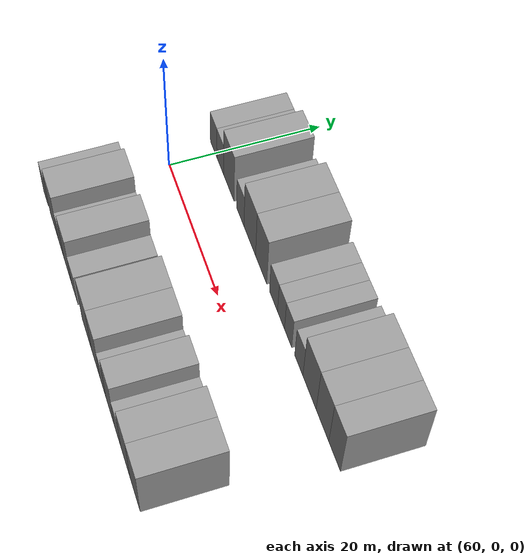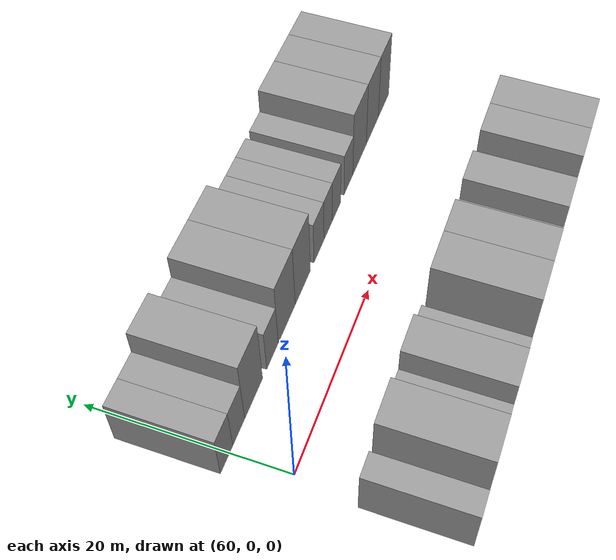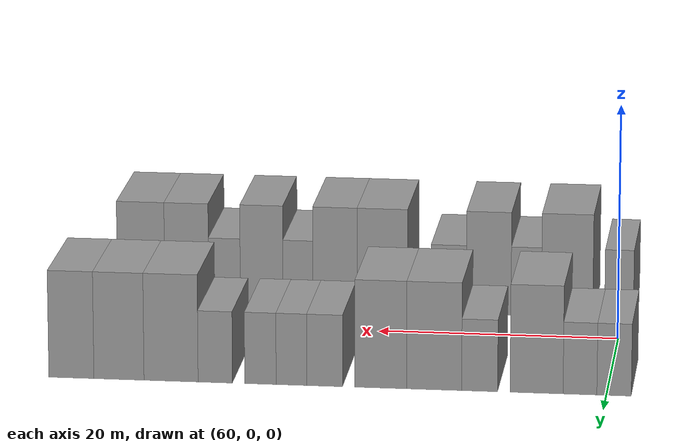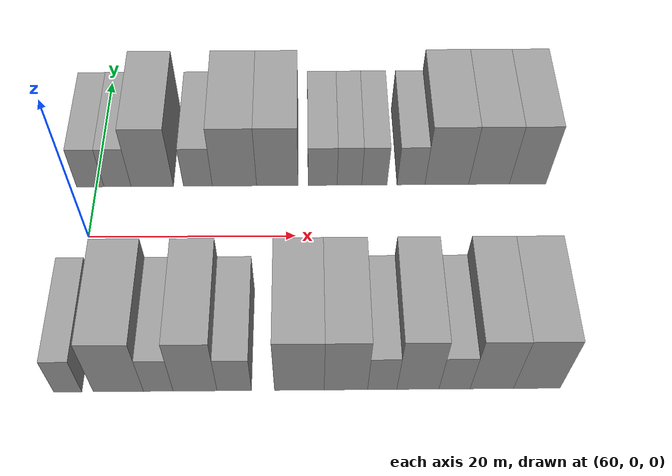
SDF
<sdf version="1.6">
 <world name="default">
  <model name="building_13">
   <static>1</static>
   <pose>59.3820 11.0000 0 0.000000 0.000000 1.570796</pose>
   <link name="link">
    <pose>0 0 3.00 0 0 0</pose>
    <collision name="collision"><geometry><box><size>10.0000 2.7569 6.0000</size></box></geometry></collision>
    <visual name="visual">
     <cast_shadows>0</cast_shadows>
     <geometry><box><size>10.0000 2.7569 6.0000</size></box></geometry>
     <material>
      <script>
       <uri>model://grey_wall/materials/scripts</uri>
       <uri>model://grey_wall/materials/textures</uri>
       <name>vrc/grey_wall</name>
      </script>
     </material>
    </visual>
   </link>
  </model>
  <model name="building_14">
   <static>1</static>
   <pose>62.1194 11.0000 0 0.000000 0.000000 1.570796</pose>
   <link name="link">
    <pose>0 0 3.00 0 0 0</pose>
    <collision name="collision"><geometry><box><size>10.0000 2.7179 6.0000</size></box></geometry></collision>
    <visual name="visual">
     <cast_shadows>0</cast_shadows>
     <geometry><box><size>10.0000 2.7179 6.0000</size></box></geometry>
     <material>
      <script>
       <uri>model://grey_wall/materials/scripts</uri>
       <uri>model://grey_wall/materials/textures</uri>
       <name>vrc/grey_wall</name>
      </script>
     </material>
    </visual>
   </link>
  </model>
  <model name="building_15">
   <static>1</static>
   <pose>65.6115 11.0000 0 0.000000 0.000000 1.570796</pose>
   <link name="link">
    <pose>0 0 4.50 0 0 0</pose>
    <collision name="collision"><geometry><box><size>10.0000 4.2663 9.0000</size></box></geometry></collision>
    <visual name="visual">
     <cast_shadows>0</cast_shadows>
     <geometry><box><size>10.0000 4.2663 9.0000</size></box></geometry>
     <material>
      <script>
       <uri>model://grey_wall/materials/scripts</uri>
       <uri>model://grey_wall/materials/textures</uri>
       <name>vrc/grey_wall</name>
      </script>
     </material>
    </visual>
   </link>
  </model>
  <model name="building_16">
   <static>1</static>
   <pose>70.1960 11.0000 0 0.000000 0.000000 1.570796</pose>
   <link name="link">
    <pose>0 0 3.00 0 0 0</pose>
    <collision name="collision"><geometry><box><size>10.0000 2.9028 6.0000</size></box></geometry></collision>
    <visual name="visual">
     <cast_shadows>0</cast_shadows>
     <geometry><box><size>10.0000 2.9028 6.0000</size></box></geometry>
     <material>
      <script>
       <uri>model://grey_wall/materials/scripts</uri>
       <uri>model://grey_wall/materials/textures</uri>
       <name>vrc/grey_wall</name>
      </script>
     </material>
    </visual>
   </link>
  </model>
  <model name="building_17">
   <static>1</static>
   <pose>73.8733 11.0000 0 0.000000 0.000000 1.570796</pose>
   <link name="link">
    <pose>0 0 4.50 0 0 0</pose>
    <collision name="collision"><geometry><box><size>10.0000 4.4518 9.0000</size></box></geometry></collision>
    <visual name="visual">
     <cast_shadows>0</cast_shadows>
     <geometry><box><size>10.0000 4.4518 9.0000</size></box></geometry>
     <material>
      <script>
       <uri>model://grey_wall/materials/scripts</uri>
       <uri>model://grey_wall/materials/textures</uri>
       <name>vrc/grey_wall</name>
      </script>
     </material>
    </visual>
   </link>
  </model>
  <model name="building_18">
   <static>1</static>
   <pose>78.1906 11.0000 0 0.000000 0.000000 1.570796</pose>
   <link name="link">
    <pose>0 0 4.50 0 0 0</pose>
    <collision name="collision"><geometry><box><size>10.0000 4.1828 9.0000</size></box></geometry></collision>
    <visual name="visual">
     <cast_shadows>0</cast_shadows>
     <geometry><box><size>10.0000 4.1828 9.0000</size></box></geometry>
     <material>
      <script>
       <uri>model://grey_wall/materials/scripts</uri>
       <uri>model://grey_wall/materials/textures</uri>
       <name>vrc/grey_wall</name>
      </script>
     </material>
    </visual>
   </link>
  </model>
  <model name="building_19">
   <static>1</static>
   <pose>82.7382 11.0000 0 0.000000 0.000000 1.570796</pose>
   <link name="link">
    <pose>0 0 3.00 0 0 0</pose>
    <collision name="collision"><geometry><box><size>10.0000 2.9123 6.0000</size></box></geometry></collision>
    <visual name="visual">
     <cast_shadows>0</cast_shadows>
     <geometry><box><size>10.0000 2.9123 6.0000</size></box></geometry>
     <material>
      <script>
       <uri>model://grey_wall/materials/scripts</uri>
       <uri>model://grey_wall/materials/textures</uri>
       <name>vrc/grey_wall</name>
      </script>
     </material>
    </visual>
   </link>
  </model>
  <model name="building_20">
   <static>1</static>
   <pose>85.4375 11.0000 0 0.000000 0.000000 1.570796</pose>
   <link name="link">
    <pose>0 0 3.00 0 0 0</pose>
    <collision name="collision"><geometry><box><size>10.0000 2.4862 6.0000</size></box></geometry></collision>
    <visual name="visual">
     <cast_shadows>0</cast_shadows>
     <geometry><box><size>10.0000 2.4862 6.0000</size></box></geometry>
     <material>
      <script>
       <uri>model://grey_wall/materials/scripts</uri>
       <uri>model://grey_wall/materials/textures</uri>
       <name>vrc/grey_wall</name>
      </script>
     </material>
    </visual>
   </link>
  </model>
  <model name="building_21">
   <static>1</static>
   <pose>87.9598 11.0000 0 0.000000 0.000000 1.570796</pose>
   <link name="link">
    <pose>0 0 3.00 0 0 0</pose>
    <collision name="collision"><geometry><box><size>10.0000 2.5585 6.0000</size></box></geometry></collision>
    <visual name="visual">
     <cast_shadows>0</cast_shadows>
     <geometry><box><size>10.0000 2.5585 6.0000</size></box></geometry>
     <material>
      <script>
       <uri>model://grey_wall/materials/scripts</uri>
       <uri>model://grey_wall/materials/textures</uri>
       <name>vrc/grey_wall</name>
      </script>
     </material>
    </visual>
   </link>
  </model>
  <model name="building_22">
   <static>1</static>
   <pose>91.6398 11.0000 0 0.000000 0.000000 1.570796</pose>
   <link name="link">
    <pose>0 0 3.00 0 0 0</pose>
    <collision name="collision"><geometry><box><size>10.0000 2.8016 6.0000</size></box></geometry></collision>
    <visual name="visual">
     <cast_shadows>0</cast_shadows>
     <geometry><box><size>10.0000 2.8016 6.0000</size></box></geometry>
     <material>
      <script>
       <uri>model://grey_wall/materials/scripts</uri>
       <uri>model://grey_wall/materials/textures</uri>
       <name>vrc/grey_wall</name>
      </script>
     </material>
    </visual>
   </link>
  </model>
  <model name="building_23">
   <static>1</static>
   <pose>95.2498 11.0000 0 0.000000 0.000000 1.570796</pose>
   <link name="link">
    <pose>0 0 4.50 0 0 0</pose>
    <collision name="collision"><geometry><box><size>10.0000 4.4185 9.0000</size></box></geometry></collision>
    <visual name="visual">
     <cast_shadows>0</cast_shadows>
     <geometry><box><size>10.0000 4.4185 9.0000</size></box></geometry>
     <material>
      <script>
       <uri>model://grey_wall/materials/scripts</uri>
       <uri>model://grey_wall/materials/textures</uri>
       <name>vrc/grey_wall</name>
      </script>
     </material>
    </visual>
   </link>
  </model>
  <model name="building_24">
   <static>1</static>
   <pose>99.5107 11.0000 0 0.000000 0.000000 1.570796</pose>
   <link name="link">
    <pose>0 0 4.50 0 0 0</pose>
    <collision name="collision"><geometry><box><size>10.0000 4.1032 9.0000</size></box></geometry></collision>
    <visual name="visual">
     <cast_shadows>0</cast_shadows>
     <geometry><box><size>10.0000 4.1032 9.0000</size></box></geometry>
     <material>
      <script>
       <uri>model://grey_wall/materials/scripts</uri>
       <uri>model://grey_wall/materials/textures</uri>
       <name>vrc/grey_wall</name>
      </script>
     </material>
    </visual>
   </link>
  </model>
  <model name="building_25">
   <static>1</static>
   <pose>103.4110 11.0000 0 0.000000 0.000000 1.570796</pose>
   <link name="link">
    <pose>0 0 4.50 0 0 0</pose>
    <collision name="collision"><geometry><box><size>10.0000 3.6974 9.0000</size></box></geometry></collision>
    <visual name="visual">
     <cast_shadows>0</cast_shadows>
     <geometry><box><size>10.0000 3.6974 9.0000</size></box></geometry>
     <material>
      <script>
       <uri>model://grey_wall/materials/scripts</uri>
       <uri>model://grey_wall/materials/textures</uri>
       <name>vrc/grey_wall</name>
      </script>
     </material>
    </visual>
   </link>
  </model>
  <model name="building_63">
   <static>1</static>
   <pose>60.2706 -11.0000 0 0.000000 0.000000 1.570796</pose>
   <link name="link">
    <pose>0 0 3.00 0 0 0</pose>
    <collision name="collision"><geometry><box><size>10.0000 2.4393 6.0000</size></box></geometry></collision>
    <visual name="visual">
     <cast_shadows>0</cast_shadows>
     <geometry><box><size>10.0000 2.4393 6.0000</size></box></geometry>
     <material>
      <script>
       <uri>model://grey_wall/materials/scripts</uri>
       <uri>model://grey_wall/materials/textures</uri>
       <name>vrc/grey_wall</name>
      </script>
     </material>
    </visual>
   </link>
  </model>
  <model name="building_64">
   <static>1</static>
   <pose>64.6664 -11.0000 0 0.000000 0.000000 1.570796</pose>
   <link name="link">
    <pose>0 0 4.50 0 0 0</pose>
    <collision name="collision"><geometry><box><size>10.0000 4.3523 9.0000</size></box></geometry></collision>
    <visual name="visual">
     <cast_shadows>0</cast_shadows>
     <geometry><box><size>10.0000 4.3523 9.0000</size></box></geometry>
     <material>
      <script>
       <uri>model://grey_wall/materials/scripts</uri>
       <uri>model://grey_wall/materials/textures</uri>
       <name>vrc/grey_wall</name>
      </script>
     </material>
    </visual>
   </link>
  </model>
  <model name="building_65">
   <static>1</static>
   <pose>68.1309 -11.0000 0 0.000000 0.000000 1.570796</pose>
   <link name="link">
    <pose>0 0 3.00 0 0 0</pose>
    <collision name="collision"><geometry><box><size>10.0000 2.5768 6.0000</size></box></geometry></collision>
    <visual name="visual">
     <cast_shadows>0</cast_shadows>
     <geometry><box><size>10.0000 2.5768 6.0000</size></box></geometry>
     <material>
      <script>
       <uri>model://grey_wall/materials/scripts</uri>
       <uri>model://grey_wall/materials/textures</uri>
       <name>vrc/grey_wall</name>
      </script>
     </material>
    </visual>
   </link>
  </model>
  <model name="building_66">
   <static>1</static>
   <pose>71.3247 -11.0000 0 0.000000 0.000000 1.570796</pose>
   <link name="link">
    <pose>0 0 4.50 0 0 0</pose>
    <collision name="collision"><geometry><box><size>10.0000 3.8108 9.0000</size></box></geometry></collision>
    <visual name="visual">
     <cast_shadows>0</cast_shadows>
     <geometry><box><size>10.0000 3.8108 9.0000</size></box></geometry>
     <material>
      <script>
       <uri>model://grey_wall/materials/scripts</uri>
       <uri>model://grey_wall/materials/textures</uri>
       <name>vrc/grey_wall</name>
      </script>
     </material>
    </visual>
   </link>
  </model>
  <model name="building_67">
   <static>1</static>
   <pose>74.7285 -11.0000 0 0.000000 0.000000 1.570796</pose>
   <link name="link">
    <pose>0 0 3.00 0 0 0</pose>
    <collision name="collision"><geometry><box><size>10.0000 2.9967 6.0000</size></box></geometry></collision>
    <visual name="visual">
     <cast_shadows>0</cast_shadows>
     <geometry><box><size>10.0000 2.9967 6.0000</size></box></geometry>
     <material>
      <script>
       <uri>model://grey_wall/materials/scripts</uri>
       <uri>model://grey_wall/materials/textures</uri>
       <name>vrc/grey_wall</name>
      </script>
     </material>
    </visual>
   </link>
  </model>
  <model name="building_68">
   <static>1</static>
   <pose>80.3791 -11.0000 0 0.000000 0.000000 1.570796</pose>
   <link name="link">
    <pose>0 0 4.50 0 0 0</pose>
    <collision name="collision"><geometry><box><size>10.0000 4.3046 9.0000</size></box></geometry></collision>
    <visual name="visual">
     <cast_shadows>0</cast_shadows>
     <geometry><box><size>10.0000 4.3046 9.0000</size></box></geometry>
     <material>
      <script>
       <uri>model://grey_wall/materials/scripts</uri>
       <uri>model://grey_wall/materials/textures</uri>
       <name>vrc/grey_wall</name>
      </script>
     </material>
    </visual>
   </link>
  </model>
  <model name="building_69">
   <static>1</static>
   <pose>84.4229 -11.0000 0 0.000000 0.000000 1.570796</pose>
   <link name="link">
    <pose>0 0 4.50 0 0 0</pose>
    <collision name="collision"><geometry><box><size>10.0000 3.7829 9.0000</size></box></geometry></collision>
    <visual name="visual">
     <cast_shadows>0</cast_shadows>
     <geometry><box><size>10.0000 3.7829 9.0000</size></box></geometry>
     <material>
      <script>
       <uri>model://grey_wall/materials/scripts</uri>
       <uri>model://grey_wall/materials/textures</uri>
       <name>vrc/grey_wall</name>
      </script>
     </material>
    </visual>
   </link>
  </model>
  <model name="building_70">
   <static>1</static>
   <pose>87.5889 -11.0000 0 0.000000 0.000000 1.570796</pose>
   <link name="link">
    <pose>0 0 3.00 0 0 0</pose>
    <collision name="collision"><geometry><box><size>10.0000 2.5490 6.0000</size></box></geometry></collision>
    <visual name="visual">
     <cast_shadows>0</cast_shadows>
     <geometry><box><size>10.0000 2.5490 6.0000</size></box></geometry>
     <material>
      <script>
       <uri>model://grey_wall/materials/scripts</uri>
       <uri>model://grey_wall/materials/textures</uri>
       <name>vrc/grey_wall</name>
      </script>
     </material>
    </visual>
   </link>
  </model>
  <model name="building_71">
   <static>1</static>
   <pose>90.6943 -11.0000 0 0.000000 0.000000 1.570796</pose>
   <link name="link">
    <pose>0 0 4.50 0 0 0</pose>
    <collision name="collision"><geometry><box><size>10.0000 3.6619 9.0000</size></box></geometry></collision>
    <visual name="visual">
     <cast_shadows>0</cast_shadows>
     <geometry><box><size>10.0000 3.6619 9.0000</size></box></geometry>
     <material>
      <script>
       <uri>model://grey_wall/materials/scripts</uri>
       <uri>model://grey_wall/materials/textures</uri>
       <name>vrc/grey_wall</name>
      </script>
     </material>
    </visual>
   </link>
  </model>
  <model name="building_72">
   <static>1</static>
   <pose>93.8847 -11.0000 0 0.000000 0.000000 1.570796</pose>
   <link name="link">
    <pose>0 0 3.00 0 0 0</pose>
    <collision name="collision"><geometry><box><size>10.0000 2.7189 6.0000</size></box></geometry></collision>
    <visual name="visual">
     <cast_shadows>0</cast_shadows>
     <geometry><box><size>10.0000 2.7189 6.0000</size></box></geometry>
     <material>
      <script>
       <uri>model://grey_wall/materials/scripts</uri>
       <uri>model://grey_wall/materials/textures</uri>
       <name>vrc/grey_wall</name>
      </script>
     </material>
    </visual>
   </link>
  </model>
  <model name="building_73">
   <static>1</static>
   <pose>97.1318 -11.0000 0 0.000000 0.000000 1.570796</pose>
   <link name="link">
    <pose>0 0 4.50 0 0 0</pose>
    <collision name="collision"><geometry><box><size>10.0000 3.7753 9.0000</size></box></geometry></collision>
    <visual name="visual">
     <cast_shadows>0</cast_shadows>
     <geometry><box><size>10.0000 3.7753 9.0000</size></box></geometry>
     <material>
      <script>
       <uri>model://grey_wall/materials/scripts</uri>
       <uri>model://grey_wall/materials/textures</uri>
       <name>vrc/grey_wall</name>
      </script>
     </material>
    </visual>
   </link>
  </model>
  <model name="building_74">
   <static>1</static>
   <pose>101.0585 -11.0000 0 0.000000 0.000000 1.570796</pose>
   <link name="link">
    <pose>0 0 4.50 0 0 0</pose>
    <collision name="collision"><geometry><box><size>10.0000 4.0779 9.0000</size></box></geometry></collision>
    <visual name="visual">
     <cast_shadows>0</cast_shadows>
     <geometry><box><size>10.0000 4.0779 9.0000</size></box></geometry>
     <material>
      <script>
       <uri>model://grey_wall/materials/scripts</uri>
       <uri>model://grey_wall/materials/textures</uri>
       <name>vrc/grey_wall</name>
      </script>
     </material>
    </visual>
   </link>
  </model>
 </world>
</sdf>
